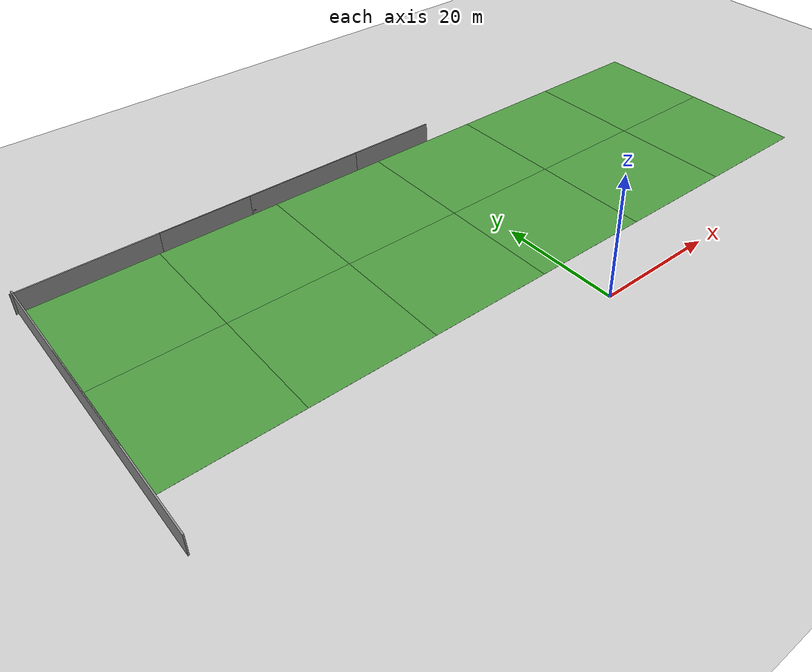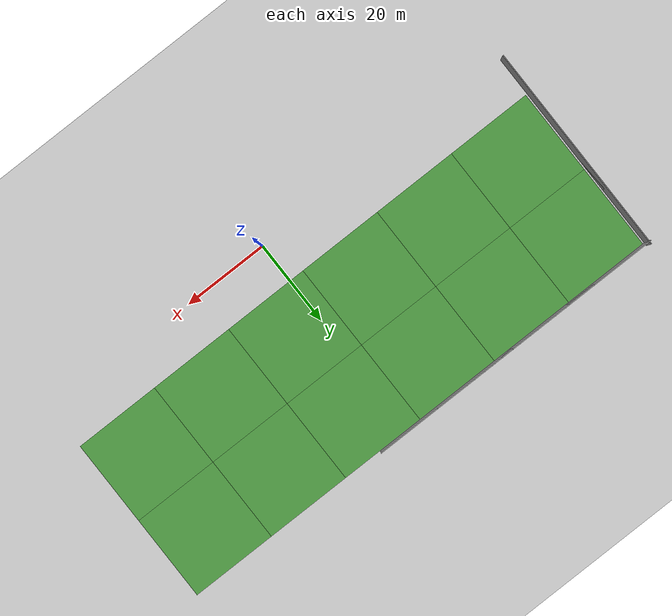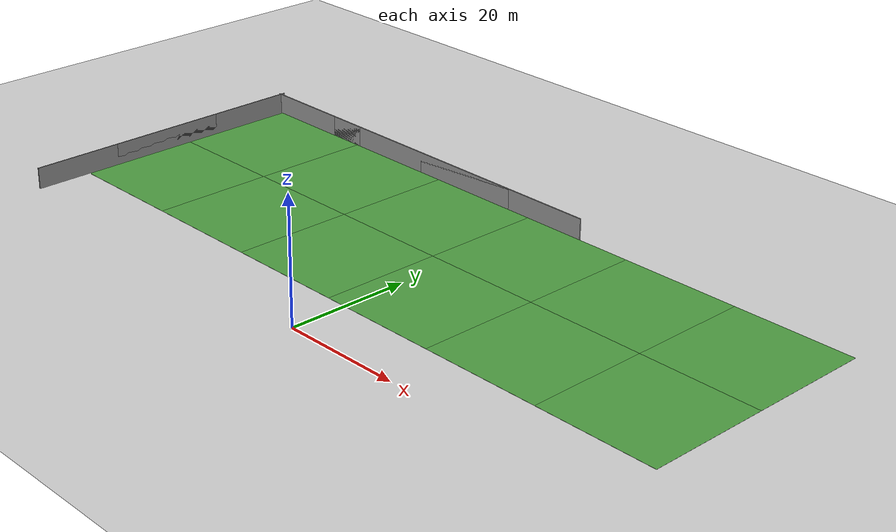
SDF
<sdf version="1.6">
 <world name="default">
  <model name="ground_plane">
   <static>1</static>
   <link name="link">
    <collision name="collision">
     <geometry><plane><normal>0 0 1</normal><size>100 100</size></plane></geometry>
     <surface><friction><ode><mu>100</mu><mu2>50</mu2></ode></friction></surface>
    </collision>
    <visual name="visual">
     <cast_shadows>0</cast_shadows>
     <geometry><plane><normal>0 0 1</normal><size>100 100</size></plane></geometry>
     <material>
      <script><uri>file://media/materials/scripts/gazebo.material</uri><name>Gazebo/Grey</name></script>
     </material>
    </visual>
    <velocity_decay><linear>0</linear><angular>0</angular></velocity_decay>
   </link>
  </model>
  <model name="wall_clone_0_clone_clone_1">
   <link name="link">
    <pose>0 0 1.4 0 -0 0</pose>
    <inertial>
     <mass>1</mass>
     <inertia><ixx>1</ixx><ixy>0</ixy><ixz>0</ixz><iyy>1</iyy><iyz>0</iyz><izz>1</izz></inertia>
    </inertial>
    <visual name="ModelPreview_1::link::visual_1">
     <cast_shadows>0</cast_shadows>
     <geometry><box><size>20 0.2 4</size></box></geometry>
     <material>
      <script>
       <uri>model://grey_wall/materials/scripts</uri>
       <uri>model://grey_wall/materials/textures</uri>
       <name>vrc/grey_wall</name>
      </script>
      <ambient>1 1 1 1</ambient>
      <diffuse>1 1 1 1</diffuse>
      <specular>0 0 0 1</specular>
      <emissive>0 0 0 1</emissive>
      <shader type="vertex"><normal_map>__default__</normal_map></shader>
     </material>
    </visual>
    <visual name="visual">
     <cast_shadows>0</cast_shadows>
     <geometry><box><size>50 0.2 4</size></box></geometry>
     <material>
      <script>
       <uri>model://grey_wall/materials/scripts</uri>
       <uri>model://grey_wall/materials/textures</uri>
       <name>vrc/grey_wall</name>
      </script>
      <ambient>1 1 1 1</ambient>
      <diffuse>1 1 1 1</diffuse>
      <specular>0 0 0 1</specular>
      <emissive>0 0 0 1</emissive>
      <shader type="vertex"><normal_map>__default__</normal_map></shader>
     </material>
    </visual>
    <collision name="collision">
     <geometry><box><size>50 0.2 4</size></box></geometry>
     <surface>
      <friction>
       <ode><mu>1</mu><mu2>1</mu2><fdir1>0 0 0</fdir1><slip1>0</slip1><slip2>0</slip2></ode>
       <torsional>
        <coefficient>1</coefficient>
        <patch_radius>0</patch_radius>
        <surface_radius>0</surface_radius>
        <use_patch_radius>1</use_patch_radius>
        <ode><slip>0</slip></ode>
       </torsional>
      </friction>
      <bounce><restitution_coefficient>0</restitution_coefficient><threshold>1e+06</threshold></bounce>
      <contact>
       <collide_without_contact>0</collide_without_contact>
       <collide_without_contact_bitmask>1</collide_without_contact_bitmask>
       <collide_bitmask>1</collide_bitmask>
       <ode>
        <soft_cfm>0</soft_cfm>
        <soft_erp>0.2</soft_erp>
        <kp>1e+13</kp>
        <kd>1</kd>
        <max_vel>0.01</max_vel>
        <min_depth>0</min_depth>
       </ode>
       <bullet>
        <split_impulse>1</split_impulse>
        <split_impulse_penetration_threshold>-0.01</split_impulse_penetration_threshold>
        <soft_cfm>0</soft_cfm>
        <soft_erp>0.2</soft_erp>
        <kp>1e+13</kp>
        <kd>1</kd>
       </bullet>
      </contact>
     </surface>
    </collision>
   </link>
   <static>1</static>
   <pose>-63.9681 25.189 0 0 -0 1.57</pose>
  </model>
  <model name="wall_clone_0_clone_1">
   <link name="link">
    <pose>0 0 1.4 0 -0 0</pose>
    <inertial>
     <mass>1</mass>
     <inertia><ixx>1</ixx><ixy>0</ixy><ixz>0</ixz><iyy>1</iyy><iyz>0</iyz><izz>1</izz></inertia>
    </inertial>
    <visual name="ModelPreview_1::link::visual_1">
     <cast_shadows>0</cast_shadows>
     <geometry><box><size>20 0.2 4</size></box></geometry>
     <material>
      <script>
       <uri>model://grey_wall/materials/scripts</uri>
       <uri>model://grey_wall/materials/textures</uri>
       <name>vrc/grey_wall</name>
      </script>
      <ambient>1 1 1 1</ambient>
      <diffuse>1 1 1 1</diffuse>
      <specular>0 0 0 1</specular>
      <emissive>0 0 0 1</emissive>
      <shader type="vertex"><normal_map>__default__</normal_map></shader>
     </material>
    </visual>
    <visual name="visual">
     <cast_shadows>0</cast_shadows>
     <geometry><box><size>50 0.2 4</size></box></geometry>
     <material>
      <script>
       <uri>model://grey_wall/materials/scripts</uri>
       <uri>model://grey_wall/materials/textures</uri>
       <name>vrc/grey_wall</name>
      </script>
      <ambient>1 1 1 1</ambient>
      <diffuse>1 1 1 1</diffuse>
      <specular>0 0 0 1</specular>
      <emissive>0 0 0 1</emissive>
      <shader type="vertex"><normal_map>__default__</normal_map></shader>
     </material>
    </visual>
    <collision name="collision">
     <geometry><box><size>50 0.2 4</size></box></geometry>
     <surface>
      <friction>
       <ode><mu>1</mu><mu2>1</mu2><fdir1>0 0 0</fdir1><slip1>0</slip1><slip2>0</slip2></ode>
       <torsional>
        <coefficient>1</coefficient>
        <patch_radius>0</patch_radius>
        <surface_radius>0</surface_radius>
        <use_patch_radius>1</use_patch_radius>
        <ode><slip>0</slip></ode>
       </torsional>
      </friction>
      <bounce><restitution_coefficient>0</restitution_coefficient><threshold>1e+06</threshold></bounce>
      <contact>
       <collide_without_contact>0</collide_without_contact>
       <collide_without_contact_bitmask>1</collide_without_contact_bitmask>
       <collide_bitmask>1</collide_bitmask>
       <ode>
        <soft_cfm>0</soft_cfm>
        <soft_erp>0.2</soft_erp>
        <kp>1e+13</kp>
        <kd>1</kd>
        <max_vel>0.01</max_vel>
        <min_depth>0</min_depth>
       </ode>
       <bullet>
        <split_impulse>1</split_impulse>
        <split_impulse_penetration_threshold>-0.01</split_impulse_penetration_threshold>
        <soft_cfm>0</soft_cfm>
        <soft_erp>0.2</soft_erp>
        <kp>1e+13</kp>
        <kd>1</kd>
       </bullet>
      </contact>
     </surface>
    </collision>
   </link>
   <static>1</static>
   <pose>-17.7944 49.5119 0 0 -0 0</pose>
  </model>
  <model name="wall_clone_0_clone_2">
   <link name="link">
    <pose>0 0 1.4 0 -0 0</pose>
    <inertial>
     <mass>1</mass>
     <inertia><ixx>1</ixx><ixy>0</ixy><ixz>0</ixz><iyy>1</iyy><iyz>0</iyz><izz>1</izz></inertia>
    </inertial>
    <visual name="ModelPreview_1::link::visual_1">
     <cast_shadows>0</cast_shadows>
     <geometry><box><size>20 0.2 4</size></box></geometry>
     <material>
      <script>
       <uri>model://grey_wall/materials/scripts</uri>
       <uri>model://grey_wall/materials/textures</uri>
       <name>vrc/grey_wall</name>
      </script>
      <ambient>1 1 1 1</ambient>
      <diffuse>1 1 1 1</diffuse>
      <specular>0 0 0 1</specular>
      <emissive>0 0 0 1</emissive>
      <shader type="vertex"><normal_map>__default__</normal_map></shader>
     </material>
    </visual>
    <visual name="visual">
     <cast_shadows>0</cast_shadows>
     <geometry><box><size>50 0.2 4</size></box></geometry>
     <material>
      <script>
       <uri>model://grey_wall/materials/scripts</uri>
       <uri>model://grey_wall/materials/textures</uri>
       <name>vrc/grey_wall</name>
      </script>
      <ambient>1 1 1 1</ambient>
      <diffuse>1 1 1 1</diffuse>
      <specular>0 0 0 1</specular>
      <emissive>0 0 0 1</emissive>
      <shader type="vertex"><normal_map>__default__</normal_map></shader>
     </material>
    </visual>
    <collision name="collision">
     <geometry><box><size>50 0.2 4</size></box></geometry>
     <surface>
      <friction>
       <ode><mu>1</mu><mu2>1</mu2><fdir1>0 0 0</fdir1><slip1>0</slip1><slip2>0</slip2></ode>
       <torsional>
        <coefficient>1</coefficient>
        <patch_radius>0</patch_radius>
        <surface_radius>0</surface_radius>
        <use_patch_radius>1</use_patch_radius>
        <ode><slip>0</slip></ode>
       </torsional>
      </friction>
      <bounce><restitution_coefficient>0</restitution_coefficient><threshold>1e+06</threshold></bounce>
      <contact>
       <collide_without_contact>0</collide_without_contact>
       <collide_without_contact_bitmask>1</collide_without_contact_bitmask>
       <collide_bitmask>1</collide_bitmask>
       <ode>
        <soft_cfm>0</soft_cfm>
        <soft_erp>0.2</soft_erp>
        <kp>1e+13</kp>
        <kd>1</kd>
        <max_vel>0.01</max_vel>
        <min_depth>0</min_depth>
       </ode>
       <bullet>
        <split_impulse>1</split_impulse>
        <split_impulse_penetration_threshold>-0.01</split_impulse_penetration_threshold>
        <soft_cfm>0</soft_cfm>
        <soft_erp>0.2</soft_erp>
        <kp>1e+13</kp>
        <kd>1</kd>
       </bullet>
      </contact>
     </surface>
    </collision>
   </link>
   <static>1</static>
   <pose>-39.3747 49.5174 0 0 -0 0</pose>
  </model>
  <model name="grass_plane_2">
   <static>1</static>
   <link name="link">
    <collision name="collision">
     <geometry><plane><normal>0 0 1</normal><size>500 500</size></plane></geometry>
     <surface><friction><ode><mu>0.5</mu><mu2>0.5</mu2></ode></friction></surface>
    </collision>
    <visual name="visual_0">
     <pose>-40 -40 0 0 -0 0</pose>
     <cast_shadows>0</cast_shadows>
     <geometry><plane><normal>0 0 1</normal><size>20 20</size></plane></geometry>
     <material>
      <script>
       <uri>model://grass_plane/materials/scripts</uri>
       <uri>model://grass_plane/materials/textures</uri>
       <name>vrc/grass</name>
      </script>
     </material>
    </visual>
    <visual name="visual_1">
     <pose>-20 -40 0 0 -0 0</pose>
     <cast_shadows>0</cast_shadows>
     <geometry><plane><normal>0 0 1</normal><size>20 20</size></plane></geometry>
     <material>
      <script>
       <uri>model://grass_plane/materials/scripts</uri>
       <uri>model://grass_plane/materials/textures</uri>
       <name>vrc/grass</name>
      </script>
     </material>
    </visual>
    <visual name="visual_2">
     <pose>0 -40 0 0 -0 0</pose>
     <cast_shadows>0</cast_shadows>
     <geometry><plane><normal>0 0 1</normal><size>20 20</size></plane></geometry>
     <material>
      <script>
       <uri>model://grass_plane/materials/scripts</uri>
       <uri>model://grass_plane/materials/textures</uri>
       <name>vrc/grass</name>
      </script>
     </material>
    </visual>
    <visual name="visual_3">
     <pose>20 -40 0 0 -0 0</pose>
     <cast_shadows>0</cast_shadows>
     <geometry><plane><normal>0 0 1</normal><size>20 20</size></plane></geometry>
     <material>
      <script>
       <uri>model://grass_plane/materials/scripts</uri>
       <uri>model://grass_plane/materials/textures</uri>
       <name>vrc/grass</name>
      </script>
     </material>
    </visual>
    <visual name="visual_4">
     <pose>40 -40 0 0 -0 0</pose>
     <cast_shadows>0</cast_shadows>
     <geometry><plane><normal>0 0 1</normal><size>20 20</size></plane></geometry>
     <material>
      <script>
       <uri>model://grass_plane/materials/scripts</uri>
       <uri>model://grass_plane/materials/textures</uri>
       <name>vrc/grass</name>
      </script>
     </material>
    </visual>
    <visual name="visual_5">
     <pose>60 -40 0 0 -0 0</pose>
     <cast_shadows>0</cast_shadows>
     <geometry><plane><normal>0 0 1</normal><size>20 20</size></plane></geometry>
     <material>
      <script>
       <uri>model://grass_plane/materials/scripts</uri>
       <uri>model://grass_plane/materials/textures</uri>
       <name>vrc/grass</name>
      </script>
     </material>
    </visual>
    <visual name="visual_6">
     <pose>-40 -20 0 0 -0 0</pose>
     <cast_shadows>0</cast_shadows>
     <geometry><plane><normal>0 0 1</normal><size>20 20</size></plane></geometry>
     <material>
      <script>
       <uri>model://grass_plane/materials/scripts</uri>
       <uri>model://grass_plane/materials/textures</uri>
       <name>vrc/grass</name>
      </script>
     </material>
    </visual>
    <visual name="visual_7">
     <pose>-20 -20 0 0 -0 0</pose>
     <cast_shadows>0</cast_shadows>
     <geometry><plane><normal>0 0 1</normal><size>20 20</size></plane></geometry>
     <material>
      <script>
       <uri>model://grass_plane/materials/scripts</uri>
       <uri>model://grass_plane/materials/textures</uri>
       <name>vrc/grass</name>
      </script>
     </material>
    </visual>
    <visual name="visual_8">
     <pose>0 -20 0 0 -0 0</pose>
     <cast_shadows>0</cast_shadows>
     <geometry><plane><normal>0 0 1</normal><size>20 20</size></plane></geometry>
     <material>
      <script>
       <uri>model://grass_plane/materials/scripts</uri>
       <uri>model://grass_plane/materials/textures</uri>
       <name>vrc/grass</name>
      </script>
     </material>
    </visual>
    <visual name="visual_9">
     <pose>20 -20 0 0 -0 0</pose>
     <cast_shadows>0</cast_shadows>
     <geometry><plane><normal>0 0 1</normal><size>20 20</size></plane></geometry>
     <material>
      <script>
       <uri>model://grass_plane/materials/scripts</uri>
       <uri>model://grass_plane/materials/textures</uri>
       <name>vrc/grass</name>
      </script>
     </material>
    </visual>
    <visual name="visual_10">
     <pose>40 -20 0 0 -0 0</pose>
     <cast_shadows>0</cast_shadows>
     <geometry><plane><normal>0 0 1</normal><size>20 20</size></plane></geometry>
     <material>
      <script>
       <uri>model://grass_plane/materials/scripts</uri>
       <uri>model://grass_plane/materials/textures</uri>
       <name>vrc/grass</name>
      </script>
     </material>
    </visual>
    <visual name="visual_11">
     <pose>60 -20 0 0 -0 0</pose>
     <cast_shadows>0</cast_shadows>
     <geometry><plane><normal>0 0 1</normal><size>20 20</size></plane></geometry>
     <material>
      <script>
       <uri>model://grass_plane/materials/scripts</uri>
       <uri>model://grass_plane/materials/textures</uri>
       <name>vrc/grass</name>
      </script>
     </material>
    </visual>
   </link>
   <pose>-13.4656 59.3431 0.02 0 -0 0</pose>
  </model>
 </world>
</sdf>
